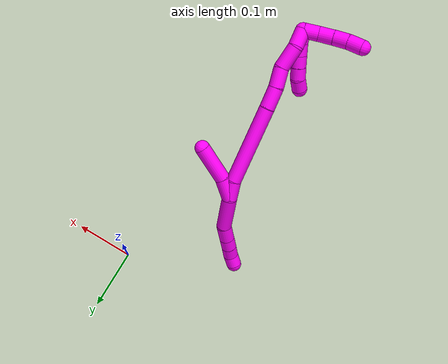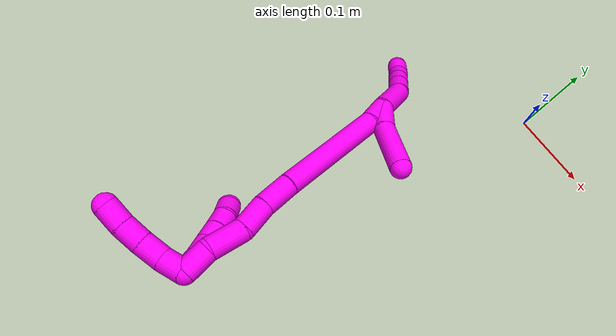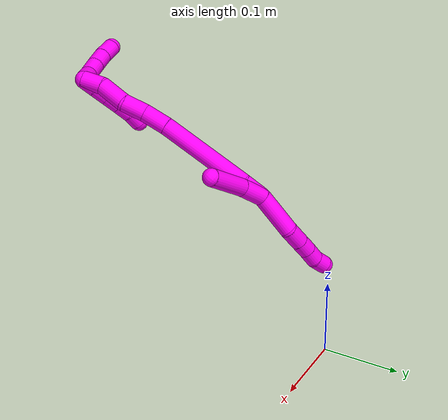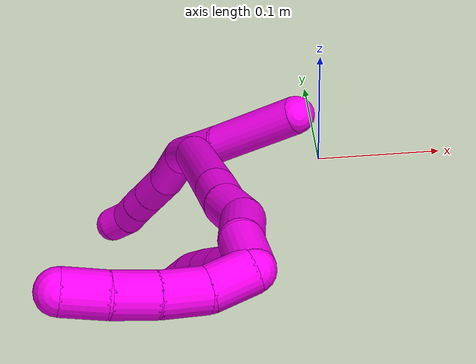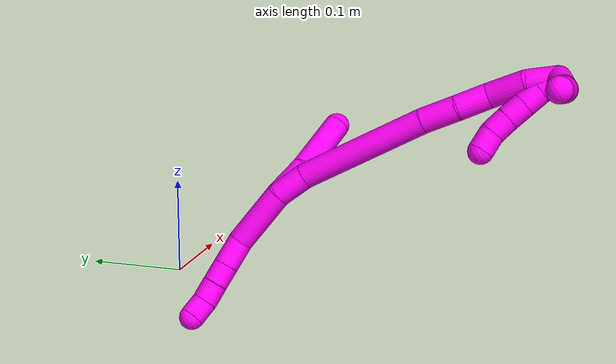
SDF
<sdf version="1.7">
 <world name="default">
  <model name="10">
   <static>0</static>
   <link name="10">
    <collision name="collision-cylinder-e_1_2_8">
     <pose>-0.0077 0.004511 -0.028985 -2.98719 -0.256701 2.06165</pose>
     <geometry><cylinder><radius>0.0125</radius><length>0.060655</length></cylinder></geometry>
     <surface>
      <friction><ode><mu>1.16</mu><mu2>1.16</mu2><slip1>0</slip1><slip2>0</slip2></ode></friction>
      <contact><ode><kp>1e+06</kp><kd>1</kd><max_vel>0</max_vel><min_depth>0.001</min_depth></ode></contact>
     </surface>
    </collision>
    <visual name="visual-cylinder-e_1_2_8">
     <pose>-0.0077 0.004511 -0.028985 -2.98719 -0.256701 2.06165</pose>
     <geometry><cylinder><radius>0.0125</radius><length>0.060655</length></cylinder></geometry>
     <material><ambient>1 0 0.964706 1</ambient></material>
    </visual>
    <collision name="collision-cylinder-e_2_8_9">
     <pose>-0.019853 0.01541 -0.069689 -2.64261 -0.321998 1.13491</pose>
     <geometry><cylinder><radius>0.0125</radius><length>0.028141</length></cylinder></geometry>
     <surface>
      <friction><ode><mu>1.16</mu><mu2>1.16</mu2><slip1>0</slip1><slip2>0</slip2></ode></friction>
      <contact><ode><kp>1e+06</kp><kd>1</kd><max_vel>0</max_vel><min_depth>0.001</min_depth></ode></contact>
     </surface>
    </collision>
    <visual name="visual-cylinder-e_2_8_9">
     <pose>-0.019853 0.01541 -0.069689 -2.64261 -0.321998 1.13491</pose>
     <geometry><cylinder><radius>0.0125</radius><length>0.028141</length></cylinder></geometry>
     <material><ambient>1 0 0.964706 1</ambient></material>
    </visual>
    <collision name="collision-cylinder-e_3_9_10">
     <pose>-0.027539 0.026454 -0.089948 -2.64225 -0.32093 1.13117</pose>
     <geometry><cylinder><radius>0.0125</radius><length>0.020499</length></cylinder></geometry>
     <surface>
      <friction><ode><mu>1.16</mu><mu2>1.16</mu2><slip1>0</slip1><slip2>0</slip2></ode></friction>
      <contact><ode><kp>1e+06</kp><kd>1</kd><max_vel>0</max_vel><min_depth>0.001</min_depth></ode></contact>
     </surface>
    </collision>
    <visual name="visual-cylinder-e_3_9_10">
     <pose>-0.027539 0.026454 -0.089948 -2.64225 -0.32093 1.13117</pose>
     <geometry><cylinder><radius>0.0125</radius><length>0.020499</length></cylinder></geometry>
     <material><ambient>1 0 0.964706 1</ambient></material>
    </visual>
    <collision name="collision-cylinder-e_4_10_11">
     <pose>-0.03427 0.035447 -0.107198 -2.67984 -0.345148 1.27611</pose>
     <geometry><cylinder><radius>0.0125</radius><length>0.020681</length></cylinder></geometry>
     <surface>
      <friction><ode><mu>1.16</mu><mu2>1.16</mu2><slip1>0</slip1><slip2>0</slip2></ode></friction>
      <contact><ode><kp>1e+06</kp><kd>1</kd><max_vel>0</max_vel><min_depth>0.001</min_depth></ode></contact>
     </surface>
    </collision>
    <visual name="visual-cylinder-e_4_10_11">
     <pose>-0.03427 0.035447 -0.107198 -2.67984 -0.345148 1.27611</pose>
     <geometry><cylinder><radius>0.0125</radius><length>0.020681</length></cylinder></geometry>
     <material><ambient>1 0 0.964706 1</ambient></material>
    </visual>
    <collision name="collision-cylinder-e_5_11_6">
     <pose>-0.039156 0.045579 -0.123954 -2.51714 -0.138971 0.424728</pose>
     <geometry><cylinder><radius>0.0125</radius><length>0.020024</length></cylinder></geometry>
     <surface>
      <friction><ode><mu>1.16</mu><mu2>1.16</mu2><slip1>0</slip1><slip2>0</slip2></ode></friction>
      <contact><ode><kp>1e+06</kp><kd>1</kd><max_vel>0</max_vel><min_depth>0.001</min_depth></ode></contact>
     </surface>
    </collision>
    <visual name="visual-cylinder-e_5_11_6">
     <pose>-0.039156 0.045579 -0.123954 -2.51714 -0.138971 0.424728</pose>
     <geometry><cylinder><radius>0.0125</radius><length>0.020024</length></cylinder></geometry>
     <material><ambient>1 0 0.964706 1</ambient></material>
    </visual>
    <collision name="collision-cylinder-e_1_2_12">
     <pose>0.000903 -0.01146 0.015011 0.652039 0.047794 0.016161</pose>
     <geometry><cylinder><radius>0.0125</radius><length>0.037813</length></cylinder></geometry>
     <surface>
      <friction><ode><mu>1.16</mu><mu2>1.16</mu2><slip1>0</slip1><slip2>0</slip2></ode></friction>
      <contact><ode><kp>1e+06</kp><kd>1</kd><max_vel>0</max_vel><min_depth>0.001</min_depth></ode></contact>
     </surface>
    </collision>
    <visual name="visual-cylinder-e_1_2_12">
     <pose>0.000903 -0.01146 0.015011 0.652039 0.047794 0.016161</pose>
     <geometry><cylinder><radius>0.0125</radius><length>0.037813</length></cylinder></geometry>
     <material><ambient>1 0 0.964706 1</ambient></material>
    </visual>
    <collision name="collision-cylinder-e_2_12_5">
     <pose>0.0042 -0.046732 0.049872 0.875907 0.077064 0.036102</pose>
     <geometry><cylinder><radius>0.0125</radius><length>0.062187</length></cylinder></geometry>
     <surface>
      <friction><ode><mu>1.16</mu><mu2>1.16</mu2><slip1>0</slip1><slip2>0</slip2></ode></friction>
      <contact><ode><kp>1e+06</kp><kd>1</kd><max_vel>0</max_vel><min_depth>0.001</min_depth></ode></contact>
     </surface>
    </collision>
    <visual name="visual-cylinder-e_2_12_5">
     <pose>0.0042 -0.046732 0.049872 0.875907 0.077064 0.036102</pose>
     <geometry><cylinder><radius>0.0125</radius><length>0.062187</length></cylinder></geometry>
     <material><ambient>1 0 0.964706 1</ambient></material>
    </visual>
    <collision name="collision-cylinder-e_1_2_13">
     <pose>-0.000209 -0.002035 0.015894 0.127312 -0.013051 -0.000832</pose>
     <geometry><cylinder><radius>0.0125</radius><length>0.03205</length></cylinder></geometry>
     <surface>
      <friction><ode><mu>1.16</mu><mu2>1.16</mu2><slip1>0</slip1><slip2>0</slip2></ode></friction>
      <contact><ode><kp>1e+06</kp><kd>1</kd><max_vel>0</max_vel><min_depth>0.001</min_depth></ode></contact>
     </surface>
    </collision>
    <visual name="visual-cylinder-e_1_2_13">
     <pose>-0.000209 -0.002035 0.015894 0.127312 -0.013051 -0.000832</pose>
     <geometry><cylinder><radius>0.0125</radius><length>0.03205</length></cylinder></geometry>
     <material><ambient>1 0 0.964706 1</ambient></material>
    </visual>
    <collision name="collision-cylinder-e_2_13_14">
     <pose>-0.008939 0.000604 0.096612 -0.071968 -0.130358 0.004699</pose>
     <geometry><cylinder><radius>0.0125</radius><length>0.131096</length></cylinder></geometry>
     <surface>
      <friction><ode><mu>1.16</mu><mu2>1.16</mu2><slip1>0</slip1><slip2>0</slip2></ode></friction>
      <contact><ode><kp>1e+06</kp><kd>1</kd><max_vel>0</max_vel><min_depth>0.001</min_depth></ode></contact>
     </surface>
    </collision>
    <visual name="visual-cylinder-e_2_13_14">
     <pose>-0.008939 0.000604 0.096612 -0.071968 -0.130358 0.004699</pose>
     <geometry><cylinder><radius>0.0125</radius><length>0.131096</length></cylinder></geometry>
     <material><ambient>1 0 0.964706 1</ambient></material>
    </visual>
    <collision name="collision-cylinder-e_3_14_15">
     <pose>-0.021281 0.006374 0.178757 -0.063191 -0.216728 0.006877</pose>
     <geometry><cylinder><radius>0.0125</radius><length>0.035544</length></cylinder></geometry>
     <surface>
      <friction><ode><mu>1.16</mu><mu2>1.16</mu2><slip1>0</slip1><slip2>0</slip2></ode></friction>
      <contact><ode><kp>1e+06</kp><kd>1</kd><max_vel>0</max_vel><min_depth>0.001</min_depth></ode></contact>
     </surface>
    </collision>
    <visual name="visual-cylinder-e_3_14_15">
     <pose>-0.021281 0.006374 0.178757 -0.063191 -0.216728 0.006877</pose>
     <geometry><cylinder><radius>0.0125</radius><length>0.035544</length></cylinder></geometry>
     <material><ambient>1 0 0.964706 1</ambient></material>
    </visual>
    <collision name="collision-cylinder-e_4_15_16">
     <pose>-0.029163 0.006068 0.211733 0.089316 -0.252809 -0.011358</pose>
     <geometry><cylinder><radius>0.0125</radius><length>0.032465</length></cylinder></geometry>
     <surface>
      <friction><ode><mu>1.16</mu><mu2>1.16</mu2><slip1>0</slip1><slip2>0</slip2></ode></friction>
      <contact><ode><kp>1e+06</kp><kd>1</kd><max_vel>0</max_vel><min_depth>0.001</min_depth></ode></contact>
     </surface>
    </collision>
    <visual name="visual-cylinder-e_4_15_16">
     <pose>-0.029163 0.006068 0.211733 0.089316 -0.252809 -0.011358</pose>
     <geometry><cylinder><radius>0.0125</radius><length>0.032465</length></cylinder></geometry>
     <material><ambient>1 0 0.964706 1</ambient></material>
    </visual>
    <collision name="collision-cylinder-e_5_16_17">
     <pose>-0.036532 0.009378 0.246201 -0.245407 -0.168959 0.020886</pose>
     <geometry><cylinder><radius>0.0125</radius><length>0.039352</length></cylinder></geometry>
     <surface>
      <friction><ode><mu>1.16</mu><mu2>1.16</mu2><slip1>0</slip1><slip2>0</slip2></ode></friction>
      <contact><ode><kp>1e+06</kp><kd>1</kd><max_vel>0</max_vel><min_depth>0.001</min_depth></ode></contact>
     </surface>
    </collision>
    <visual name="visual-cylinder-e_5_16_17">
     <pose>-0.036532 0.009378 0.246201 -0.245407 -0.168959 0.020886</pose>
     <geometry><cylinder><radius>0.0125</radius><length>0.039352</length></cylinder></geometry>
     <material><ambient>1 0 0.964706 1</ambient></material>
    </visual>
    <collision name="collision-cylinder-e_6_17_1">
     <pose>-0.046378 0.015246 0.278183 -0.087553 -0.459318 0.020481</pose>
     <geometry><cylinder><radius>0.0125</radius><length>0.029492</length></cylinder></geometry>
     <surface>
      <friction><ode><mu>1.16</mu><mu2>1.16</mu2><slip1>0</slip1><slip2>0</slip2></ode></friction>
      <contact><ode><kp>1e+06</kp><kd>1</kd><max_vel>0</max_vel><min_depth>0.001</min_depth></ode></contact>
     </surface>
    </collision>
    <visual name="visual-cylinder-e_6_17_1">
     <pose>-0.046378 0.015246 0.278183 -0.087553 -0.459318 0.020481</pose>
     <geometry><cylinder><radius>0.0125</radius><length>0.029492</length></cylinder></geometry>
     <material><ambient>1 0 0.964706 1</ambient></material>
    </visual>
    <collision name="collision-cylinder-e_1_1_18">
     <pose>-0.052639 0.017975 0.281479 -2.98359 0.02766 -0.345912</pose>
     <geometry><cylinder><radius>0.0125</radius><length>0.02</length></cylinder></geometry>
     <surface>
      <friction><ode><mu>1.16</mu><mu2>1.16</mu2><slip1>0</slip1><slip2>0</slip2></ode></friction>
      <contact><ode><kp>1e+06</kp><kd>1</kd><max_vel>0</max_vel><min_depth>0.001</min_depth></ode></contact>
     </surface>
    </collision>
    <visual name="visual-cylinder-e_1_1_18">
     <pose>-0.052639 0.017975 0.281479 -2.98359 0.02766 -0.345912</pose>
     <geometry><cylinder><radius>0.0125</radius><length>0.02</length></cylinder></geometry>
     <material><ambient>1 0 0.964706 1</ambient></material>
    </visual>
    <collision name="collision-cylinder-e_2_18_19">
     <pose>-0.052758 0.022424 0.262038 -2.84966 -0.039558 0.267505</pose>
     <geometry><cylinder><radius>0.0125</radius><length>0.02</length></cylinder></geometry>
     <surface>
      <friction><ode><mu>1.16</mu><mu2>1.16</mu2><slip1>0</slip1><slip2>0</slip2></ode></friction>
      <contact><ode><kp>1e+06</kp><kd>1</kd><max_vel>0</max_vel><min_depth>0.001</min_depth></ode></contact>
     </surface>
    </collision>
    <visual name="visual-cylinder-e_2_18_19">
     <pose>-0.052758 0.022424 0.262038 -2.84966 -0.039558 0.267505</pose>
     <geometry><cylinder><radius>0.0125</radius><length>0.02</length></cylinder></geometry>
     <material><ambient>1 0 0.964706 1</ambient></material>
    </visual>
    <collision name="collision-cylinder-e_3_19_20">
     <pose>-0.053525 0.028179 0.242899 -2.84932 -0.037229 0.251632</pose>
     <geometry><cylinder><radius>0.0125</radius><length>0.02</length></cylinder></geometry>
     <surface>
      <friction><ode><mu>1.16</mu><mu2>1.16</mu2><slip1>0</slip1><slip2>0</slip2></ode></friction>
      <contact><ode><kp>1e+06</kp><kd>1</kd><max_vel>0</max_vel><min_depth>0.001</min_depth></ode></contact>
     </surface>
    </collision>
    <visual name="visual-cylinder-e_3_19_20">
     <pose>-0.053525 0.028179 0.242899 -2.84932 -0.037229 0.251632</pose>
     <geometry><cylinder><radius>0.0125</radius><length>0.02</length></cylinder></geometry>
     <material><ambient>1 0 0.964706 1</ambient></material>
    </visual>
    <collision name="collision-cylinder-e_4_20_21">
     <pose>-0.054631 0.034276 0.22389 -2.81305 -0.073412 0.436021</pose>
     <geometry><cylinder><radius>0.0125</radius><length>0.02</length></cylinder></geometry>
     <surface>
      <friction><ode><mu>1.16</mu><mu2>1.16</mu2><slip1>0</slip1><slip2>0</slip2></ode></friction>
      <contact><ode><kp>1e+06</kp><kd>1</kd><max_vel>0</max_vel><min_depth>0.001</min_depth></ode></contact>
     </surface>
    </collision>
    <visual name="visual-cylinder-e_4_20_21">
     <pose>-0.054631 0.034276 0.22389 -2.81305 -0.073412 0.436021</pose>
     <geometry><cylinder><radius>0.0125</radius><length>0.02</length></cylinder></geometry>
     <material><ambient>1 0 0.964706 1</ambient></material>
    </visual>
    <collision name="collision-cylinder-e_5_21_4">
     <pose>-0.05828 0.042095 0.206064 -2.6398 -0.295855 1.05329</pose>
     <geometry><cylinder><radius>0.0125</radius><length>0.02</length></cylinder></geometry>
     <surface>
      <friction><ode><mu>1.16</mu><mu2>1.16</mu2><slip1>0</slip1><slip2>0</slip2></ode></friction>
      <contact><ode><kp>1e+06</kp><kd>1</kd><max_vel>0</max_vel><min_depth>0.001</min_depth></ode></contact>
     </surface>
    </collision>
    <visual name="visual-cylinder-e_5_21_4">
     <pose>-0.05828 0.042095 0.206064 -2.6398 -0.295855 1.05329</pose>
     <geometry><cylinder><radius>0.0125</radius><length>0.02</length></cylinder></geometry>
     <material><ambient>1 0 0.964706 1</ambient></material>
    </visual>
    <collision name="collision-cylinder-e_1_1_22">
     <pose>-0.05405 0.028937 0.292724 -1.46165 -0.089743 0.080457</pose>
     <geometry><cylinder><radius>0.0125</radius><length>0.025323</length></cylinder></geometry>
     <surface>
      <friction><ode><mu>1.16</mu><mu2>1.16</mu2><slip1>0</slip1><slip2>0</slip2></ode></friction>
      <contact><ode><kp>1e+06</kp><kd>1</kd><max_vel>0</max_vel><min_depth>0.001</min_depth></ode></contact>
     </surface>
    </collision>
    <visual name="visual-cylinder-e_1_1_22">
     <pose>-0.05405 0.028937 0.292724 -1.46165 -0.089743 0.080457</pose>
     <geometry><cylinder><radius>0.0125</radius><length>0.025323</length></cylinder></geometry>
     <material><ambient>1 0 0.964706 1</ambient></material>
    </visual>
    <collision name="collision-cylinder-e_2_22_23">
     <pose>-0.052314 0.053906 0.295971 -1.42129 0.22444 -0.193375</pose>
     <geometry><cylinder><radius>0.0125</radius><length>0.025794</length></cylinder></geometry>
     <surface>
      <friction><ode><mu>1.16</mu><mu2>1.16</mu2><slip1>0</slip1><slip2>0</slip2></ode></friction>
      <contact><ode><kp>1e+06</kp><kd>1</kd><max_vel>0</max_vel><min_depth>0.001</min_depth></ode></contact>
     </surface>
    </collision>
    <visual name="visual-cylinder-e_2_22_23">
     <pose>-0.052314 0.053906 0.295971 -1.42129 0.22444 -0.193375</pose>
     <geometry><cylinder><radius>0.0125</radius><length>0.025794</length></cylinder></geometry>
     <material><ambient>1 0 0.964706 1</ambient></material>
    </visual>
    <collision name="collision-cylinder-e_3_23_24">
     <pose>-0.0456 0.077756 0.29938 -1.437 0.322104 -0.282226</pose>
     <geometry><cylinder><radius>0.0125</radius><length>0.024289</length></cylinder></geometry>
     <surface>
      <friction><ode><mu>1.16</mu><mu2>1.16</mu2><slip1>0</slip1><slip2>0</slip2></ode></friction>
      <contact><ode><kp>1e+06</kp><kd>1</kd><max_vel>0</max_vel><min_depth>0.001</min_depth></ode></contact>
     </surface>
    </collision>
    <visual name="visual-cylinder-e_3_23_24">
     <pose>-0.0456 0.077756 0.29938 -1.437 0.322104 -0.282226</pose>
     <geometry><cylinder><radius>0.0125</radius><length>0.024289</length></cylinder></geometry>
     <material><ambient>1 0 0.964706 1</ambient></material>
    </visual>
    <collision name="collision-cylinder-e_4_24_3">
     <pose>-0.037153 0.100574 0.301175 -1.54816 0.383589 -0.375204</pose>
     <geometry><cylinder><radius>0.0125</radius><length>0.024594</length></cylinder></geometry>
     <surface>
      <friction><ode><mu>1.16</mu><mu2>1.16</mu2><slip1>0</slip1><slip2>0</slip2></ode></friction>
      <contact><ode><kp>1e+06</kp><kd>1</kd><max_vel>0</max_vel><min_depth>0.001</min_depth></ode></contact>
     </surface>
    </collision>
    <visual name="visual-cylinder-e_4_24_3">
     <pose>-0.037153 0.100574 0.301175 -1.54816 0.383589 -0.375204</pose>
     <geometry><cylinder><radius>0.0125</radius><length>0.024594</length></cylinder></geometry>
     <material><ambient>1 0 0.964706 1</ambient></material>
    </visual>
    <collision name="collision-sphere-3">
     <pose>-0.032551 0.111974 0.301433 0 -0 0</pose>
     <geometry><sphere><radius>0.0125</radius></sphere></geometry>
     <surface>
      <friction><ode><mu>1.16</mu><mu2>1.16</mu2><slip1>0</slip1><slip2>0</slip2></ode></friction>
      <contact><ode><kp>1e+06</kp><kd>1</kd><max_vel>0</max_vel><min_depth>0.001</min_depth></ode></contact>
     </surface>
    </collision>
    <visual name="visual-sphere-3">
     <pose>-0.032551 0.111974 0.301433 0 -0 0</pose>
     <geometry><sphere><radius>0.0125</radius></sphere></geometry>
     <material><ambient>1 0 0.964706 1</ambient></material>
    </visual>
    <collision name="collision-sphere-24">
     <pose>-0.041755 0.089173 0.300917 0 -0 0</pose>
     <geometry><sphere><radius>0.0125</radius></sphere></geometry>
     <surface>
      <friction><ode><mu>1.16</mu><mu2>1.16</mu2><slip1>0</slip1><slip2>0</slip2></ode></friction>
      <contact><ode><kp>1e+06</kp><kd>1</kd><max_vel>0</max_vel><min_depth>0.001</min_depth></ode></contact>
     </surface>
    </collision>
    <visual name="visual-sphere-24">
     <pose>-0.041755 0.089173 0.300917 0 -0 0</pose>
     <geometry><sphere><radius>0.0125</radius></sphere></geometry>
     <material><ambient>1 0 0.964706 1</ambient></material>
    </visual>
    <collision name="collision-sphere-23">
     <pose>-0.049444 0.066339 0.297843 0 -0 0</pose>
     <geometry><sphere><radius>0.0125</radius></sphere></geometry>
     <surface>
      <friction><ode><mu>1.16</mu><mu2>1.16</mu2><slip1>0</slip1><slip2>0</slip2></ode></friction>
      <contact><ode><kp>1e+06</kp><kd>1</kd><max_vel>0</max_vel><min_depth>0.001</min_depth></ode></contact>
     </surface>
    </collision>
    <visual name="visual-sphere-23">
     <pose>-0.049444 0.066339 0.297843 0 -0 0</pose>
     <geometry><sphere><radius>0.0125</radius></sphere></geometry>
     <material><ambient>1 0 0.964706 1</ambient></material>
    </visual>
    <collision name="collision-sphere-22">
     <pose>-0.055185 0.041473 0.294098 0 -0 0</pose>
     <geometry><sphere><radius>0.0125</radius></sphere></geometry>
     <surface>
      <friction><ode><mu>1.16</mu><mu2>1.16</mu2><slip1>0</slip1><slip2>0</slip2></ode></friction>
      <contact><ode><kp>1e+06</kp><kd>1</kd><max_vel>0</max_vel><min_depth>0.001</min_depth></ode></contact>
     </surface>
    </collision>
    <visual name="visual-sphere-22">
     <pose>-0.055185 0.041473 0.294098 0 -0 0</pose>
     <geometry><sphere><radius>0.0125</radius></sphere></geometry>
     <material><ambient>1 0 0.964706 1</ambient></material>
    </visual>
    <collision name="collision-sphere-4">
     <pose>-0.061196 0.046696 0.197678 0 -0 0</pose>
     <geometry><sphere><radius>0.0125</radius></sphere></geometry>
     <surface>
      <friction><ode><mu>1.16</mu><mu2>1.16</mu2><slip1>0</slip1><slip2>0</slip2></ode></friction>
      <contact><ode><kp>1e+06</kp><kd>1</kd><max_vel>0</max_vel><min_depth>0.001</min_depth></ode></contact>
     </surface>
    </collision>
    <visual name="visual-sphere-4">
     <pose>-0.061196 0.046696 0.197678 0 -0 0</pose>
     <geometry><sphere><radius>0.0125</radius></sphere></geometry>
     <material><ambient>1 0 0.964706 1</ambient></material>
    </visual>
    <collision name="collision-sphere-21">
     <pose>-0.055364 0.037494 0.214451 0 -0 0</pose>
     <geometry><sphere><radius>0.0125</radius></sphere></geometry>
     <surface>
      <friction><ode><mu>1.16</mu><mu2>1.16</mu2><slip1>0</slip1><slip2>0</slip2></ode></friction>
      <contact><ode><kp>1e+06</kp><kd>1</kd><max_vel>0</max_vel><min_depth>0.001</min_depth></ode></contact>
     </surface>
    </collision>
    <visual name="visual-sphere-21">
     <pose>-0.055364 0.037494 0.214451 0 -0 0</pose>
     <geometry><sphere><radius>0.0125</radius></sphere></geometry>
     <material><ambient>1 0 0.964706 1</ambient></material>
    </visual>
    <collision name="collision-sphere-20">
     <pose>-0.053897 0.031058 0.23333 0 -0 0</pose>
     <geometry><sphere><radius>0.0125</radius></sphere></geometry>
     <surface>
      <friction><ode><mu>1.16</mu><mu2>1.16</mu2><slip1>0</slip1><slip2>0</slip2></ode></friction>
      <contact><ode><kp>1e+06</kp><kd>1</kd><max_vel>0</max_vel><min_depth>0.001</min_depth></ode></contact>
     </surface>
    </collision>
    <visual name="visual-sphere-20">
     <pose>-0.053897 0.031058 0.23333 0 -0 0</pose>
     <geometry><sphere><radius>0.0125</radius></sphere></geometry>
     <material><ambient>1 0 0.964706 1</ambient></material>
    </visual>
    <collision name="collision-sphere-6">
     <pose>-0.040543 0.051376 -0.131998 0 -0 0</pose>
     <geometry><sphere><radius>0.0125</radius></sphere></geometry>
     <surface>
      <friction><ode><mu>1.16</mu><mu2>1.16</mu2><slip1>0</slip1><slip2>0</slip2></ode></friction>
      <contact><ode><kp>1e+06</kp><kd>1</kd><max_vel>0</max_vel><min_depth>0.001</min_depth></ode></contact>
     </surface>
    </collision>
    <visual name="visual-sphere-6">
     <pose>-0.040543 0.051376 -0.131998 0 -0 0</pose>
     <geometry><sphere><radius>0.0125</radius></sphere></geometry>
     <material><ambient>1 0 0.964706 1</ambient></material>
    </visual>
    <collision name="collision-sphere-11">
     <pose>-0.037769 0.039782 -0.11591 0 -0 0</pose>
     <geometry><sphere><radius>0.0125</radius></sphere></geometry>
     <surface>
      <friction><ode><mu>1.16</mu><mu2>1.16</mu2><slip1>0</slip1><slip2>0</slip2></ode></friction>
      <contact><ode><kp>1e+06</kp><kd>1</kd><max_vel>0</max_vel><min_depth>0.001</min_depth></ode></contact>
     </surface>
    </collision>
    <visual name="visual-sphere-11">
     <pose>-0.037769 0.039782 -0.11591 0 -0 0</pose>
     <geometry><sphere><radius>0.0125</radius></sphere></geometry>
     <material><ambient>1 0 0.964706 1</ambient></material>
    </visual>
    <collision name="collision-sphere-10">
     <pose>-0.030772 0.031112 -0.098487 0 -0 0</pose>
     <geometry><sphere><radius>0.0125</radius></sphere></geometry>
     <surface>
      <friction><ode><mu>1.16</mu><mu2>1.16</mu2><slip1>0</slip1><slip2>0</slip2></ode></friction>
      <contact><ode><kp>1e+06</kp><kd>1</kd><max_vel>0</max_vel><min_depth>0.001</min_depth></ode></contact>
     </surface>
    </collision>
    <visual name="visual-sphere-10">
     <pose>-0.030772 0.031112 -0.098487 0 -0 0</pose>
     <geometry><sphere><radius>0.0125</radius></sphere></geometry>
     <material><ambient>1 0 0.964706 1</ambient></material>
    </visual>
    <collision name="collision-sphere-9">
     <pose>-0.024305 0.021797 -0.081409 0 -0 0</pose>
     <geometry><sphere><radius>0.0125</radius></sphere></geometry>
     <surface>
      <friction><ode><mu>1.16</mu><mu2>1.16</mu2><slip1>0</slip1><slip2>0</slip2></ode></friction>
      <contact><ode><kp>1e+06</kp><kd>1</kd><max_vel>0</max_vel><min_depth>0.001</min_depth></ode></contact>
     </surface>
    </collision>
    <visual name="visual-sphere-9">
     <pose>-0.024305 0.021797 -0.081409 0 -0 0</pose>
     <geometry><sphere><radius>0.0125</radius></sphere></geometry>
     <material><ambient>1 0 0.964706 1</ambient></material>
    </visual>
    <collision name="collision-sphere-2">
     <geometry><sphere><radius>0.0125</radius></sphere></geometry>
     <surface>
      <friction><ode><mu>1.16</mu><mu2>1.16</mu2><slip1>0</slip1><slip2>0</slip2></ode></friction>
      <contact><ode><kp>1e+06</kp><kd>1</kd><max_vel>0</max_vel><min_depth>0.001</min_depth></ode></contact>
     </surface>
    </collision>
    <visual name="visual-sphere-2">
     <geometry><sphere><radius>0.0125</radius></sphere></geometry>
     <material><ambient>1 0 0.964706 1</ambient></material>
    </visual>
    <collision name="collision-sphere-19">
     <pose>-0.053153 0.025299 0.252468 0 -0 0</pose>
     <geometry><sphere><radius>0.0125</radius></sphere></geometry>
     <surface>
      <friction><ode><mu>1.16</mu><mu2>1.16</mu2><slip1>0</slip1><slip2>0</slip2></ode></friction>
      <contact><ode><kp>1e+06</kp><kd>1</kd><max_vel>0</max_vel><min_depth>0.001</min_depth></ode></contact>
     </surface>
    </collision>
    <visual name="visual-sphere-19">
     <pose>-0.053153 0.025299 0.252468 0 -0 0</pose>
     <geometry><sphere><radius>0.0125</radius></sphere></geometry>
     <material><ambient>1 0 0.964706 1</ambient></material>
    </visual>
    <collision name="collision-sphere-8">
     <pose>-0.0154 0.009023 -0.057969 0 -0 0</pose>
     <geometry><sphere><radius>0.0125</radius></sphere></geometry>
     <surface>
      <friction><ode><mu>1.16</mu><mu2>1.16</mu2><slip1>0</slip1><slip2>0</slip2></ode></friction>
      <contact><ode><kp>1e+06</kp><kd>1</kd><max_vel>0</max_vel><min_depth>0.001</min_depth></ode></contact>
     </surface>
    </collision>
    <visual name="visual-sphere-8">
     <pose>-0.0154 0.009023 -0.057969 0 -0 0</pose>
     <geometry><sphere><radius>0.0125</radius></sphere></geometry>
     <material><ambient>1 0 0.964706 1</ambient></material>
    </visual>
    <collision name="collision-sphere-12">
     <pose>0.001807 -0.022919 0.030022 0 -0 0</pose>
     <geometry><sphere><radius>0.0125</radius></sphere></geometry>
     <surface>
      <friction><ode><mu>1.16</mu><mu2>1.16</mu2><slip1>0</slip1><slip2>0</slip2></ode></friction>
      <contact><ode><kp>1e+06</kp><kd>1</kd><max_vel>0</max_vel><min_depth>0.001</min_depth></ode></contact>
     </surface>
    </collision>
    <visual name="visual-sphere-12">
     <pose>0.001807 -0.022919 0.030022 0 -0 0</pose>
     <geometry><sphere><radius>0.0125</radius></sphere></geometry>
     <material><ambient>1 0 0.964706 1</ambient></material>
    </visual>
    <collision name="collision-sphere-5">
     <pose>0.006594 -0.070545 0.069722 0 -0 0</pose>
     <geometry><sphere><radius>0.0125</radius></sphere></geometry>
     <surface>
      <friction><ode><mu>1.16</mu><mu2>1.16</mu2><slip1>0</slip1><slip2>0</slip2></ode></friction>
      <contact><ode><kp>1e+06</kp><kd>1</kd><max_vel>0</max_vel><min_depth>0.001</min_depth></ode></contact>
     </surface>
    </collision>
    <visual name="visual-sphere-5">
     <pose>0.006594 -0.070545 0.069722 0 -0 0</pose>
     <geometry><sphere><radius>0.0125</radius></sphere></geometry>
     <material><ambient>1 0 0.964706 1</ambient></material>
    </visual>
    <collision name="collision-sphere-13">
     <pose>-0.000418 -0.004069 0.031788 0 -0 0</pose>
     <geometry><sphere><radius>0.0125</radius></sphere></geometry>
     <surface>
      <friction><ode><mu>1.16</mu><mu2>1.16</mu2><slip1>0</slip1><slip2>0</slip2></ode></friction>
      <contact><ode><kp>1e+06</kp><kd>1</kd><max_vel>0</max_vel><min_depth>0.001</min_depth></ode></contact>
     </surface>
    </collision>
    <visual name="visual-sphere-13">
     <pose>-0.000418 -0.004069 0.031788 0 -0 0</pose>
     <geometry><sphere><radius>0.0125</radius></sphere></geometry>
     <material><ambient>1 0 0.964706 1</ambient></material>
    </visual>
    <collision name="collision-sphere-14">
     <pose>-0.017459 0.005278 0.161435 0 -0 0</pose>
     <geometry><sphere><radius>0.0125</radius></sphere></geometry>
     <surface>
      <friction><ode><mu>1.16</mu><mu2>1.16</mu2><slip1>0</slip1><slip2>0</slip2></ode></friction>
      <contact><ode><kp>1e+06</kp><kd>1</kd><max_vel>0</max_vel><min_depth>0.001</min_depth></ode></contact>
     </surface>
    </collision>
    <visual name="visual-sphere-14">
     <pose>-0.017459 0.005278 0.161435 0 -0 0</pose>
     <geometry><sphere><radius>0.0125</radius></sphere></geometry>
     <material><ambient>1 0 0.964706 1</ambient></material>
    </visual>
    <collision name="collision-sphere-15">
     <pose>-0.025103 0.00747 0.196079 0 -0 0</pose>
     <geometry><sphere><radius>0.0125</radius></sphere></geometry>
     <surface>
      <friction><ode><mu>1.16</mu><mu2>1.16</mu2><slip1>0</slip1><slip2>0</slip2></ode></friction>
      <contact><ode><kp>1e+06</kp><kd>1</kd><max_vel>0</max_vel><min_depth>0.001</min_depth></ode></contact>
     </surface>
    </collision>
    <visual name="visual-sphere-15">
     <pose>-0.025103 0.00747 0.196079 0 -0 0</pose>
     <geometry><sphere><radius>0.0125</radius></sphere></geometry>
     <material><ambient>1 0 0.964706 1</ambient></material>
    </visual>
    <collision name="collision-sphere-16">
     <pose>-0.033223 0.004666 0.227386 0 -0 0</pose>
     <geometry><sphere><radius>0.0125</radius></sphere></geometry>
     <surface>
      <friction><ode><mu>1.16</mu><mu2>1.16</mu2><slip1>0</slip1><slip2>0</slip2></ode></friction>
      <contact><ode><kp>1e+06</kp><kd>1</kd><max_vel>0</max_vel><min_depth>0.001</min_depth></ode></contact>
     </surface>
    </collision>
    <visual name="visual-sphere-16">
     <pose>-0.033223 0.004666 0.227386 0 -0 0</pose>
     <geometry><sphere><radius>0.0125</radius></sphere></geometry>
     <material><ambient>1 0 0.964706 1</ambient></material>
    </visual>
    <collision name="collision-sphere-17">
     <pose>-0.03984 0.01409 0.265016 0 -0 0</pose>
     <geometry><sphere><radius>0.0125</radius></sphere></geometry>
     <surface>
      <friction><ode><mu>1.16</mu><mu2>1.16</mu2><slip1>0</slip1><slip2>0</slip2></ode></friction>
      <contact><ode><kp>1e+06</kp><kd>1</kd><max_vel>0</max_vel><min_depth>0.001</min_depth></ode></contact>
     </surface>
    </collision>
    <visual name="visual-sphere-17">
     <pose>-0.03984 0.01409 0.265016 0 -0 0</pose>
     <geometry><sphere><radius>0.0125</radius></sphere></geometry>
     <material><ambient>1 0 0.964706 1</ambient></material>
    </visual>
    <collision name="collision-sphere-1">
     <pose>-0.052915 0.016402 0.29135 0 -0 0</pose>
     <geometry><sphere><radius>0.0125</radius></sphere></geometry>
     <surface>
      <friction><ode><mu>1.16</mu><mu2>1.16</mu2><slip1>0</slip1><slip2>0</slip2></ode></friction>
      <contact><ode><kp>1e+06</kp><kd>1</kd><max_vel>0</max_vel><min_depth>0.001</min_depth></ode></contact>
     </surface>
    </collision>
    <visual name="visual-sphere-1">
     <pose>-0.052915 0.016402 0.29135 0 -0 0</pose>
     <geometry><sphere><radius>0.0125</radius></sphere></geometry>
     <material><ambient>1 0 0.964706 1</ambient></material>
    </visual>
    <collision name="collision-sphere-18">
     <pose>-0.052362 0.019548 0.271607 0 -0 0</pose>
     <geometry><sphere><radius>0.0125</radius></sphere></geometry>
     <surface>
      <friction><ode><mu>1.16</mu><mu2>1.16</mu2><slip1>0</slip1><slip2>0</slip2></ode></friction>
      <contact><ode><kp>1e+06</kp><kd>1</kd><max_vel>0</max_vel><min_depth>0.001</min_depth></ode></contact>
     </surface>
    </collision>
    <visual name="visual-sphere-18">
     <pose>-0.052362 0.019548 0.271607 0 -0 0</pose>
     <geometry><sphere><radius>0.0125</radius></sphere></geometry>
     <material><ambient>1 0 0.964706 1</ambient></material>
    </visual>
    <inertial>
     <pose>-0.024868 0.013595 0.12234 0 -0 0</pose>
     <mass>0.75</mass>
     <inertia>
      <ixx>0.000271</ixx>
      <ixy>0</ixy>
      <ixz>0</ixz>
      <iyy>0.000274</iyy>
      <iyz>0</iyz>
      <izz>3.4e-05</izz>
     </inertia>
    </inertial>
   </link>
   <pose>-0.11493 -0.152623 0.128705 -0.207577 -0.923355 1.95644</pose>
  </model>
 </world>
</sdf>
